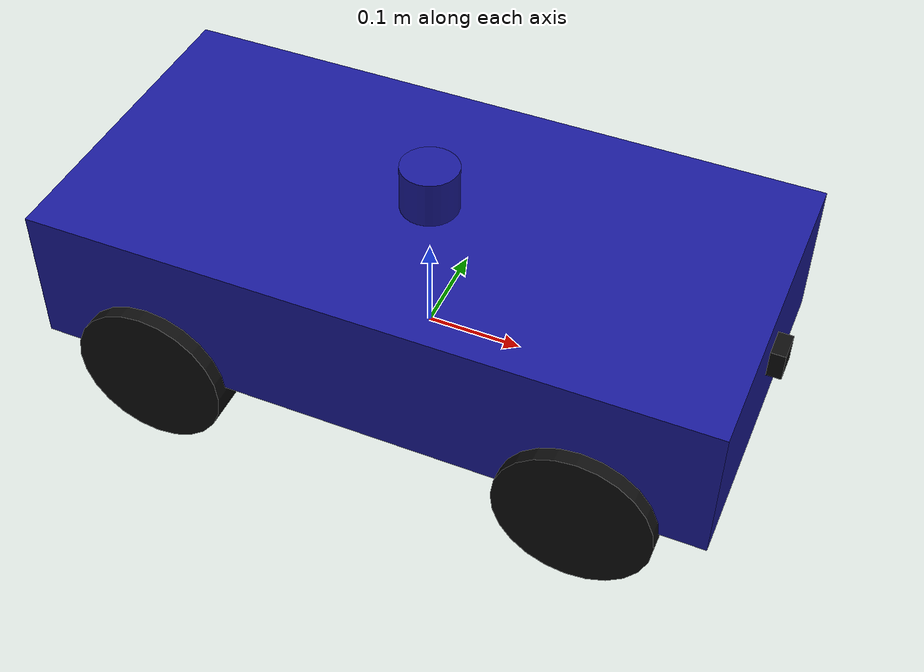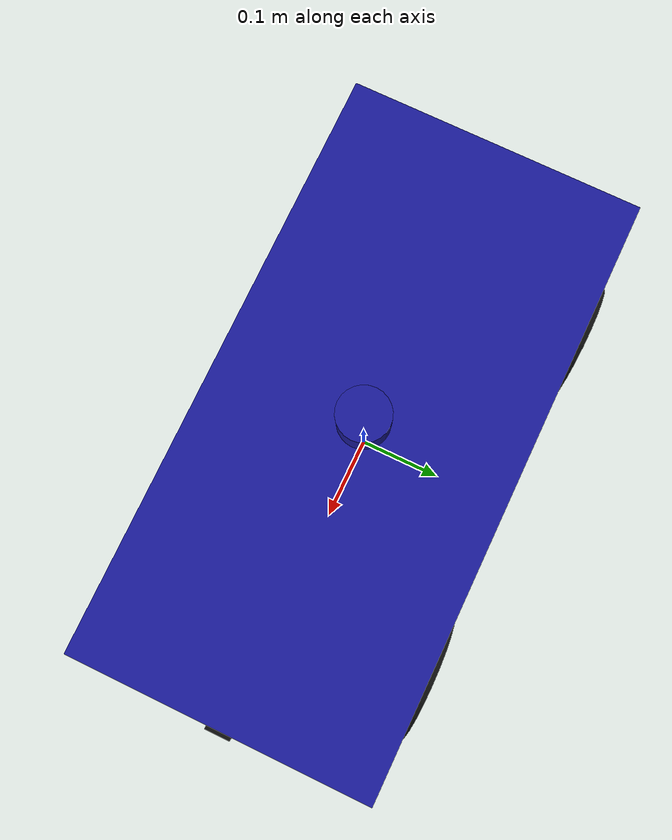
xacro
<?xml version="1.0"?>
<robot name="orion_vehicle" xmlns:xacro="http://www.ros.org/wiki/xacro">

  <!-- ==================== Chassis Properties ==================== -->
  <xacro:property name="chassis_length" value="0.70"/>
  <xacro:property name="chassis_width" value="0.35"/>
  <xacro:property name="chassis_height" value="0.15"/>
  <xacro:property name="chassis_mass" value="5.0"/>

  <!-- ==================== Wheel Properties ==================== -->
  <xacro:property name="wheel_radius" value="0.08"/>
  <xacro:property name="wheel_width" value="0.06"/>
  <xacro:property name="wheel_mass" value="0.5"/>

  <!-- ==================== Layout Properties ==================== -->
  <xacro:property name="wheelbase" value="0.45"/>
  <xacro:property name="track_width" value="0.32"/>

  <!-- Ground clearance: distance from ground to base_link origin -->
  <xacro:property name="ground_clearance" value="${wheel_radius}"/>
  <xacro:arg name="use_mock" default="true"/>

  <!-- ==================== Materials ==================== -->
  <material name="orion_body_color">
    <color rgba="0.1 0.1 0.6 1.0"/>
  </material>
  <material name="orion_wheel_color">
    <color rgba="0.05 0.05 0.05 1.0"/>
  </material>
<!-- ==================== Wheel Macro ==================== -->
  <xacro:macro name="orion_wheel" params="prefix parent_link xyz">
    <link name="${prefix}_wheel_link">
      <visual>
        <origin xyz="0 0 0" rpy="${pi/2} 0 0"/>
        <geometry>
          <cylinder radius="${wheel_radius}" length="${wheel_width}"/>
        </geometry>
        <material name="orion_wheel_color"/>
      </visual>
      <collision>
        <origin xyz="0 0 0" rpy="${pi/2} 0 0"/>
        <geometry>
          <cylinder radius="${wheel_radius}" length="${wheel_width}"/>
        </geometry>
      </collision>
      <inertial>
        <mass value="${wheel_mass}"/>
        <origin xyz="0 0 0" rpy="0 0 0"/>
        <inertia
          ixx="${(1/12) * wheel_mass * (3*wheel_radius*wheel_radius + wheel_width*wheel_width)}"
          iyy="${(1/12) * wheel_mass * (3*wheel_radius*wheel_radius + wheel_width*wheel_width)}"
          izz="${0.5 * wheel_mass * wheel_radius * wheel_radius}"
          ixy="0" ixz="0" iyz="0"/>
      </inertial>
    </link>

    <joint name="${prefix}_wheel_joint" type="continuous">
      <parent link="${parent_link}"/>
      <child link="${prefix}_wheel_link"/>
      <origin xyz="${xyz}" rpy="0 0 0"/>
      <axis xyz="0 1 0"/>
    </joint>
  </xacro:macro>

  <!-- ==================== base_footprint (true root, ground level) ==================== -->
  <link name="base_footprint"/>

  <joint name="base_footprint_joint" type="fixed">
    <parent link="base_footprint"/>
    <child link="base_link"/>
    <origin xyz="0 0 ${ground_clearance}" rpy="0 0 0"/>
  </joint>
  <!-- ==================== base_link (chassis) ==================== -->
  <link name="base_link">
    <visual>
      <origin xyz="0 0 0" rpy="0 0 0"/>
      <geometry>
        <box size="${chassis_length} ${chassis_width} ${chassis_height}"/>
      </geometry>
      <material name="orion_body_color"/>
    </visual>
    <collision>
      <origin xyz="0 0 0" rpy="0 0 0"/>
      <geometry>
        <box size="${chassis_length} ${chassis_width} ${chassis_height}"/>
      </geometry>
    </collision>
    <inertial>
      <mass value="${chassis_mass}"/>
      <origin xyz="0 0 0" rpy="0 0 0"/>
      <inertia
        ixx="${(1/12) * chassis_mass * (chassis_width*chassis_width + chassis_height*chassis_height)}"
        iyy="${(1/12) * chassis_mass * (chassis_length*chassis_length + chassis_height*chassis_height)}"
        izz="${(1/12) * chassis_mass * (chassis_length*chassis_length + chassis_width*chassis_width)}"
        ixy="0" ixz="0" iyz="0"/>
    </inertial>
  </link>

<!-- ==================== Rear Wheels (no steering) ==================== -->
  <xacro:orion_wheel
    prefix="rear_left"
    parent_link="base_link"
    xyz="${-wheelbase/2} ${track_width/2} ${-ground_clearance}"/>

  <xacro:orion_wheel
    prefix="rear_right"
    parent_link="base_link"
    xyz="${-wheelbase/2} ${-track_width/2} ${-ground_clearance}"/>

    <!-- ==================== Steering Wheel Macro (front wheels) ==================== -->
  <xacro:macro name="orion_steering_wheel" params="prefix parent_link xyz">
    <link name="${prefix}_steering_link">
      <inertial>
        <mass value="0.05"/>
        <origin xyz="0 0 0" rpy="0 0 0"/>
        <inertia ixx="0.0001" iyy="0.0001" izz="0.0001" ixy="0" ixz="0" iyz="0"/>
      </inertial>
    </link>

    <joint name="${prefix}_steering_joint" type="revolute">
      <parent link="${parent_link}"/>
      <child link="${prefix}_steering_link"/>
      <origin xyz="${xyz}" rpy="0 0 0"/>
      <axis xyz="0 0 1"/>
      <limit lower="-0.6" upper="0.6" effort="10" velocity="2"/>
    </joint>

    <xacro:orion_wheel
      prefix="${prefix}"
      parent_link="${prefix}_steering_link"
      xyz="0 0 0"/>
  </xacro:macro>

<!-- ==================== Front Wheels (steerable) ==================== -->
  <xacro:orion_steering_wheel
    prefix="front_left"
    parent_link="base_link"
    xyz="${wheelbase/2} ${track_width/2} ${-ground_clearance}"/>

  <xacro:orion_steering_wheel
    prefix="front_right"
    parent_link="base_link"
    xyz="${wheelbase/2} ${-track_width/2} ${-ground_clearance}"/>

<!-- ==================== Sensor Mount Properties ==================== -->
  <xacro:property name="lidar_radius" value="0.03"/>
  <xacro:property name="lidar_height" value="0.05"/>
  <xacro:property name="camera_size" value="0.03"/>
  <xacro:property name="imu_size" value="0.02"/>

  <!-- ==================== IMU ==================== -->
  <link name="imu_link">
    <visual>
      <origin xyz="0 0 0" rpy="0 0 0"/>
      <geometry>
        <box size="${imu_size} ${imu_size} ${imu_size}"/>
      </geometry>
      <material name="orion_wheel_color"/>
    </visual>
    <inertial>
      <mass value="0.01"/>
      <origin xyz="0 0 0" rpy="0 0 0"/>
      <inertia ixx="0.0001" iyy="0.0001" izz="0.0001" ixy="0" ixz="0" iyz="0"/>
    </inertial>
  </link>

  <joint name="imu_joint" type="fixed">
    <parent link="base_link"/>
    <child link="imu_link"/>
    <origin xyz="0 0 0" rpy="0 0 0"/>
  </joint>

  <!-- ==================== LiDAR ==================== -->
  <link name="lidar_link">
    <visual>
      <origin xyz="0 0 0" rpy="0 0 0"/>
      <geometry>
        <cylinder radius="${lidar_radius}" length="${lidar_height}"/>
      </geometry>
      <material name="orion_body_color"/>
    </visual>
    <inertial>
      <mass value="0.1"/>
      <origin xyz="0 0 0" rpy="0 0 0"/>
      <inertia ixx="0.0001" iyy="0.0001" izz="0.0001" ixy="0" ixz="0" iyz="0"/>
    </inertial>
  </link>

  <joint name="lidar_joint" type="fixed">
    <parent link="base_link"/>
    <child link="lidar_link"/>
    <origin xyz="0 0 ${chassis_height/2 + lidar_height/2}" rpy="0 0 0"/>
  </joint>

  <!-- ==================== Camera ==================== -->
  <link name="camera_link">
    <visual>
      <origin xyz="0 0 0" rpy="0 0 0"/>
      <geometry>
        <box size="${camera_size} ${camera_size} ${camera_size}"/>
      </geometry>
      <material name="orion_wheel_color"/>
    </visual>
    <inertial>
      <mass value="0.05"/>
      <origin xyz="0 0 0" rpy="0 0 0"/>
      <inertia ixx="0.0001" iyy="0.0001" izz="0.0001" ixy="0" ixz="0" iyz="0"/>
    </inertial>
  </link>

  <joint name="camera_joint" type="fixed">
    <parent link="base_link"/>
    <child link="camera_link"/>
    <origin xyz="${chassis_length/2} 0 ${camera_size/2}" rpy="0 0 0"/>
  </joint>

  <ros2_control name="OrionSystem" type="system">
    <hardware>
      <xacro:if value="$(arg use_mock)">
        <plugin>mock_components/GenericSystem</plugin>
      </xacro:if>

      <xacro:unless value="$(arg use_mock)">
        <plugin>gz_ros2_control/GazeboSimSystem</plugin>
      </xacro:unless>
    </hardware>

    <joint name="rear_left_wheel_joint">
      <command_interface name="velocity"/>
      <state_interface name="velocity"/>
      <state_interface name="position"/>
    </joint>

    <joint name="rear_right_wheel_joint">
      <command_interface name="velocity"/>
      <state_interface name="velocity"/>
      <state_interface name="position"/>
    </joint>

    <joint name="front_left_wheel_joint">
      <command_interface name="velocity"/>
      <state_interface name="position"/>
      <state_interface name="velocity"/>
    </joint>

    <joint name="front_right_wheel_joint">
      <command_interface name="velocity"/>
      <state_interface name="velocity"/>
      <state_interface name="position"/>
    </joint>

    <joint name="front_left_steering_joint">
      <command_interface name="position"/>
      <state_interface name="position"/>
    </joint>

    <joint name="front_right_steering_joint">
      <command_interface name="position"/>
      <state_interface name="position"/>
    </joint>

  </ros2_control>

</robot>
